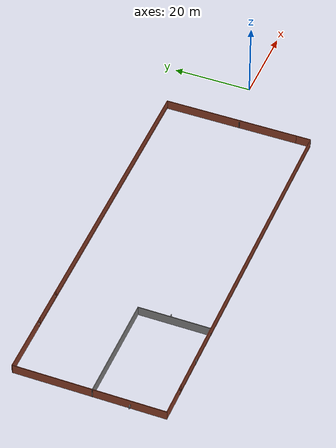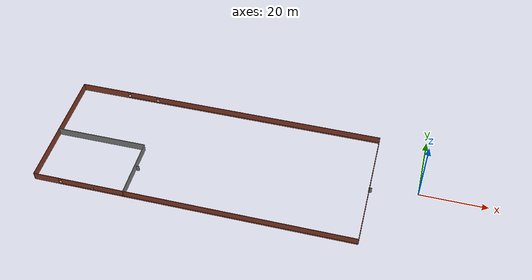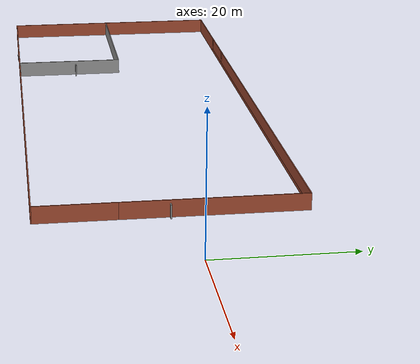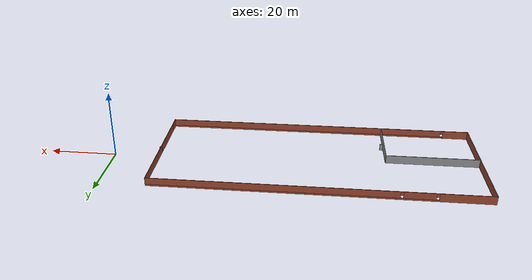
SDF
<?xml version='1.0'?>
<sdf version='1.6'>
  <model name='RoboSpace-1'>
    <pose frame=''>-61.4764 -2.17984 0 0 -0 0</pose>
    <link name='Door_1'>
      <collision name='Door_1_Collision'>
        <geometry>
          <box>
            <size>0.9 0.17 2</size>
          </box>
        </geometry>
        <pose frame=''>0 0 1 0 -0 0</pose>
      </collision>
      <visual name='Door_1_Visual'>
        <pose frame=''>0 0 1 0 -0 0</pose>
        <geometry>
          <box>
            <size>0.9 0.17 2</size>
          </box>
        </geometry>
        <material>
          <script>
            <uri>file://media/materials/scripts/gazebo.material</uri>
            <name>Gazebo/Grey</name>
          </script>
        </material>
      </visual>
      <pose frame=''>47.8457 -0.268391 0 0 -0 0</pose>
    </link>
    <link name='Door_2'>
      <collision name='Door_2_Collision'>
        <geometry>
          <box>
            <size>0.9 0.17 2</size>
          </box>
        </geometry>
        <pose frame=''>0 0 1 0 -0 0</pose>
      </collision>
      <visual name='Door_2_Visual'>
        <pose frame=''>0 0 1 0 -0 0</pose>
        <geometry>
          <box>
            <size>0.9 0.17 2</size>
          </box>
        </geometry>
        <material>
          <script>
            <uri>file://media/materials/scripts/gazebo.material</uri>
            <name>Gazebo/Grey</name>
          </script>
        </material>
      </visual>
      <pose frame=''>-19.5292 -8.73094 0 0 -0 0</pose>
    </link>
    <link name='Wall_1'>
      <collision name='Wall_1_Collision'>
        <geometry>
          <box>
            <size>38 0.15 2.5</size>
          </box>
        </geometry>
        <pose frame=''>0 0 1.25 0 -0 0</pose>
      </collision>
      <visual name='Wall_1_Visual'>
        <pose frame=''>0 0 1.25 0 -0 0</pose>
        <geometry>
          <box>
            <size>38 0.15 2.5</size>
          </box>
        </geometry>
        <material>
          <script>
            <uri>file://media/materials/scripts/gazebo.material</uri>
            <name>Gazebo/Bricks</name>
          </script>
          <ambient>1 1 1 1</ambient>
        </material>
        <meta>
          <layer>0</layer>
        </meta>
      </visual>
      <pose frame=''>-47.5207 0.010074 0 0 0 -1.5708</pose>
    </link>
    <link name='Wall_17'>
      <collision name='Wall_17_Collision'>
        <geometry>
          <box>
            <size>27.5 0.15 2.5</size>
          </box>
        </geometry>
        <pose frame=''>0 0 1.25 0 -0 0</pose>
      </collision>
      <visual name='Wall_17_Visual'>
        <pose frame=''>0 0 1.25 0 -0 0</pose>
        <geometry>
          <box>
            <size>27.5 0.15 2.5</size>
          </box>
        </geometry>
        <material>
          <script>
            <uri>file://media/materials/scripts/gazebo.material</uri>
            <name>Gazebo/Grey</name>
          </script>
          <ambient>1 1 1 1</ambient>
        </material>
        <meta>
          <layer>0</layer>
        </meta>
      </visual>
      <pose frame=''>-33.9043 -0.835075 0 0 -0 0</pose>
    </link>
    <link name='Wall_18'>
      <collision name='Wall_18_Collision'>
        <geometry>
          <box>
            <size>18.25 0.15 2.5</size>
          </box>
        </geometry>
        <pose frame=''>0 0 1.25 0 -0 0</pose>
      </collision>
      <visual name='Wall_18_Visual'>
        <pose frame=''>0 0 1.25 0 -0 0</pose>
        <geometry>
          <box>
            <size>18.25 0.15 2.5</size>
          </box>
        </geometry>
        <material>
          <script>
            <uri>file://media/materials/scripts/gazebo.material</uri>
            <name>Gazebo/Grey</name>
          </script>
          <ambient>1 1 1 1</ambient>
        </material>
        <meta>
          <layer>0</layer>
        </meta>
      </visual>
      <pose frame=''>-20.2293 -9.88508 0 0 0 -1.5708</pose>
    </link>
    <link name='Wall_2'>
      <pose frame=''>0.029343 -18.9149 0 0 -0 0</pose>
      <visual name='Wall_2_Visual_0'>
        <pose frame=''>-43.7608 0 1.25 0 -0 0</pose>
        <geometry>
          <box>
            <size>7.72843 0.15 2.5</size>
          </box>
        </geometry>
        <material>
          <script>
            <uri>file://media/materials/scripts/gazebo.material</uri>
            <name>Gazebo/Bricks</name>
          </script>
          <ambient>1 1 1 1</ambient>
        </material>
        <meta>
          <layer>0</layer>
        </meta>
      </visual>
      <collision name='Wall_2_Collision_0'>
        <geometry>
          <box>
            <size>7.72843 0.15 2.5</size>
          </box>
        </geometry>
        <pose frame=''>-43.7608 0 1.25 0 -0 0</pose>
      </collision>
      <visual name='Wall_2_Visual_1'>
        <pose frame=''>3.86421 0 0.25 0 -0 0</pose>
        <geometry>
          <box>
            <size>87.5216 0.15 0.5</size>
          </box>
        </geometry>
        <material>
          <script>
            <uri>file://media/materials/scripts/gazebo.material</uri>
            <name>Gazebo/Bricks</name>
          </script>
          <ambient>1 1 1 1</ambient>
        </material>
        <meta>
          <layer>0</layer>
        </meta>
      </visual>
      <collision name='Wall_2_Collision_1'>
        <geometry>
          <box>
            <size>87.5216 0.15 0.5</size>
          </box>
        </geometry>
        <pose frame=''>3.86421 0 0.25 0 -0 0</pose>
      </collision>
      <visual name='Wall_2_Visual_2'>
        <pose frame=''>4.26421 0 1.5 0 -0 0</pose>
        <geometry>
          <box>
            <size>86.7216 0.15 2</size>
          </box>
        </geometry>
        <material>
          <script>
            <uri>file://media/materials/scripts/gazebo.material</uri>
            <name>Gazebo/Bricks</name>
          </script>
          <ambient>1 1 1 1</ambient>
        </material>
        <meta>
          <layer>0</layer>
        </meta>
      </visual>
      <collision name='Wall_2_Collision_2'>
        <geometry>
          <box>
            <size>86.7216 0.15 2</size>
          </box>
        </geometry>
        <pose frame=''>4.26421 0 1.5 0 -0 0</pose>
      </collision>
      <visual name='Wall_2_Visual_3'>
        <pose frame=''>-39.4966 0 1.9 0 -0 0</pose>
        <geometry>
          <box>
            <size>0.8 0.15 1.2</size>
          </box>
        </geometry>
        <material>
          <script>
            <uri>file://media/materials/scripts/gazebo.material</uri>
            <name>Gazebo/Bricks</name>
          </script>
          <ambient>1 1 1 1</ambient>
        </material>
        <meta>
          <layer>0</layer>
        </meta>
      </visual>
      <collision name='Wall_2_Collision_3'>
        <geometry>
          <box>
            <size>0.8 0.15 1.2</size>
          </box>
        </geometry>
        <pose frame=''>-39.4966 0 1.9 0 -0 0</pose>
      </collision>
    </link>
    <link name='Wall_3'>
      <collision name='Wall_3_Collision'>
        <geometry>
          <box>
            <size>11.75 0.15 2.5</size>
          </box>
        </geometry>
        <pose frame=''>0 0 1.25 0 -0 0</pose>
      </collision>
      <visual name='Wall_3_Visual'>
        <pose frame=''>0 0 1.25 0 -0 0</pose>
        <geometry>
          <box>
            <size>11.75 0.15 2.5</size>
          </box>
        </geometry>
        <material>
          <script>
            <uri>file://media/materials/scripts/gazebo.material</uri>
            <name>Gazebo/Bricks</name>
          </script>
          <ambient>1 1 1 1</ambient>
        </material>
        <meta>
          <layer>0</layer>
        </meta>
      </visual>
      <pose frame=''>47.5793 -13.1149 0 0 -0 1.5708</pose>
    </link>
    <link name='Wall_5'>
      <pose frame=''>0.029343 18.9351 0 0 -0 0</pose>
      <visual name='Wall_5_Visual_0'>
        <pose frame=''>-40.1387 0 1.25 0 -0 0</pose>
        <geometry>
          <box>
            <size>14.9727 0.15 2.5</size>
          </box>
        </geometry>
        <material>
          <script>
            <uri>file://media/materials/scripts/gazebo.material</uri>
            <name>Gazebo/Bricks</name>
          </script>
          <ambient>1 1 1 1</ambient>
        </material>
        <meta>
          <layer>0</layer>
        </meta>
      </visual>
      <collision name='Wall_5_Collision_0'>
        <geometry>
          <box>
            <size>14.9727 0.15 2.5</size>
          </box>
        </geometry>
        <pose frame=''>-40.1387 0 1.25 0 -0 0</pose>
      </collision>
      <visual name='Wall_5_Visual_1'>
        <pose frame=''>7.48634 0 0.25 0 -0 0</pose>
        <geometry>
          <box>
            <size>80.2773 0.15 0.5</size>
          </box>
        </geometry>
        <material>
          <script>
            <uri>file://media/materials/scripts/gazebo.material</uri>
            <name>Gazebo/Bricks</name>
          </script>
          <ambient>1 1 1 1</ambient>
        </material>
        <meta>
          <layer>0</layer>
        </meta>
      </visual>
      <collision name='Wall_5_Collision_1'>
        <geometry>
          <box>
            <size>80.2773 0.15 0.5</size>
          </box>
        </geometry>
        <pose frame=''>7.48634 0 0.25 0 -0 0</pose>
      </collision>
      <visual name='Wall_5_Visual_2'>
        <pose frame=''>-27.5328 0 1.5 0 -0 0</pose>
        <geometry>
          <box>
            <size>8.63899 0.15 2</size>
          </box>
        </geometry>
        <material>
          <script>
            <uri>file://media/materials/scripts/gazebo.material</uri>
            <name>Gazebo/Bricks</name>
          </script>
          <ambient>1 1 1 1</ambient>
        </material>
        <meta>
          <layer>0</layer>
        </meta>
      </visual>
      <collision name='Wall_5_Collision_2'>
        <geometry>
          <box>
            <size>8.63899 0.15 2</size>
          </box>
        </geometry>
        <pose frame=''>-27.5328 0 1.5 0 -0 0</pose>
      </collision>
      <visual name='Wall_5_Visual_3'>
        <pose frame=''>12.6058 0 1.5 0 -0 0</pose>
        <geometry>
          <box>
            <size>70.0383 0.15 2</size>
          </box>
        </geometry>
        <material>
          <script>
            <uri>file://media/materials/scripts/gazebo.material</uri>
            <name>Gazebo/Bricks</name>
          </script>
          <ambient>1 1 1 1</ambient>
        </material>
        <meta>
          <layer>0</layer>
        </meta>
      </visual>
      <collision name='Wall_5_Collision_3'>
        <geometry>
          <box>
            <size>70.0383 0.15 2</size>
          </box>
        </geometry>
        <pose frame=''>12.6058 0 1.5 0 -0 0</pose>
      </collision>
      <visual name='Wall_5_Visual_4'>
        <pose frame=''>-32.2523 0 1.9 0 -0 0</pose>
        <geometry>
          <box>
            <size>0.8 0.15 1.2</size>
          </box>
        </geometry>
        <material>
          <script>
            <uri>file://media/materials/scripts/gazebo.material</uri>
            <name>Gazebo/Bricks</name>
          </script>
          <ambient>1 1 1 1</ambient>
        </material>
        <meta>
          <layer>0</layer>
        </meta>
      </visual>
      <collision name='Wall_5_Collision_4'>
        <geometry>
          <box>
            <size>0.8 0.15 1.2</size>
          </box>
        </geometry>
        <pose frame=''>-32.2523 0 1.9 0 -0 0</pose>
      </collision>
      <visual name='Wall_5_Visual_5'>
        <pose frame=''>-22.8133 0 1.9 0 -0 0</pose>
        <geometry>
          <box>
            <size>0.8 0.15 1.2</size>
          </box>
        </geometry>
        <material>
          <script>
            <uri>file://media/materials/scripts/gazebo.material</uri>
            <name>Gazebo/Bricks</name>
          </script>
          <ambient>1 1 1 1</ambient>
        </material>
        <meta>
          <layer>0</layer>
        </meta>
      </visual>
      <collision name='Wall_5_Collision_5'>
        <geometry>
          <box>
            <size>0.8 0.15 1.2</size>
          </box>
        </geometry>
        <pose frame=''>-22.8133 0 1.9 0 -0 0</pose>
      </collision>
    </link>
    <link name='Wall_6'>
      <collision name='Wall_6_Collision'>
        <geometry>
          <box>
            <size>34.25 0.15 2.5</size>
          </box>
        </geometry>
        <pose frame=''>0 0 1.25 0 -0 0</pose>
      </collision>
      <visual name='Wall_6_Visual'>
        <pose frame=''>0 0 1.25 0 -0 0</pose>
        <geometry>
          <box>
            <size>34.25 0.15 2.5</size>
          </box>
        </geometry>
        <material>
          <script>
            <uri>file://media/materials/scripts/gazebo.material</uri>
            <name>Gazebo/Bricks</name>
          </script>
          <ambient>1 1 1 1</ambient>
        </material>
        <meta>
          <layer>0</layer>
        </meta>
      </visual>
      <pose frame=''>47.5793 1.88507 0 0 0 -1.5708</pose>
    </link>
    <link name='Window_3'>
      <collision name='Window_3_Collision'>
        <geometry>
          <box>
            <size>0.8 0.17 0.8</size>
          </box>
        </geometry>
        <pose frame=''>0 0 0.4 0 -0 0</pose>
      </collision>
      <visual name='Window_3_Visual'>
        <pose frame=''>0 0 0.4 0 -0 0</pose>
        <geometry>
          <box>
            <size>0.8 0.17 0.8</size>
          </box>
        </geometry>
        <material>
          <script>
            <uri>file://media/materials/scripts/gazebo.material</uri>
            <name>Gazebo/Grey</name>
          </script>
        </material>
      </visual>
      <pose frame=''>-29.6473 -19.0517 0.5 0 -0 0</pose>
    </link>
    <link name='Window_4'>
      <collision name='Window_4_Collision'>
        <geometry>
          <box>
            <size>0.8 0.17 0.8</size>
          </box>
        </geometry>
        <pose frame=''>0 0 0.4 0 -0 0</pose>
      </collision>
      <visual name='Window_4_Visual'>
        <pose frame=''>0 0 0.4 0 -0 0</pose>
        <geometry>
          <box>
            <size>0.8 0.17 0.8</size>
          </box>
        </geometry>
        <material>
          <script>
            <uri>file://media/materials/scripts/gazebo.material</uri>
            <name>Gazebo/Grey</name>
          </script>
        </material>
      </visual>
      <pose frame=''>-47.864 -10.0857 0.5 0 -0 0</pose>
    </link>
    <static>1</static>
  </model>
</sdf>
